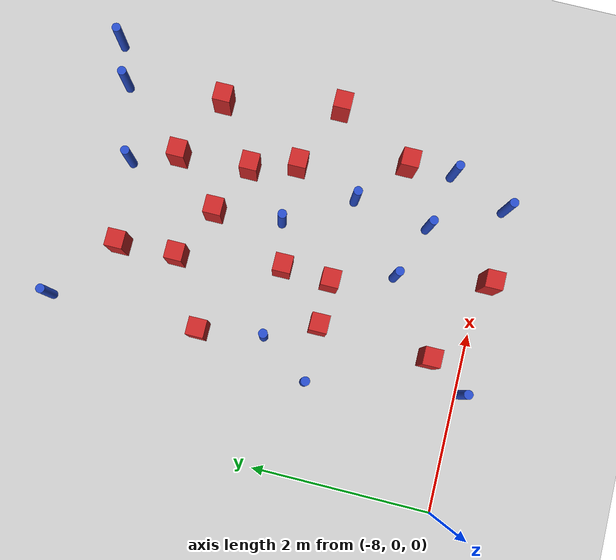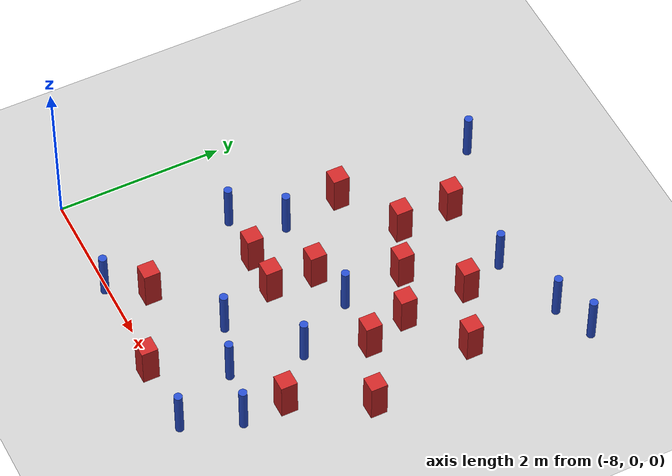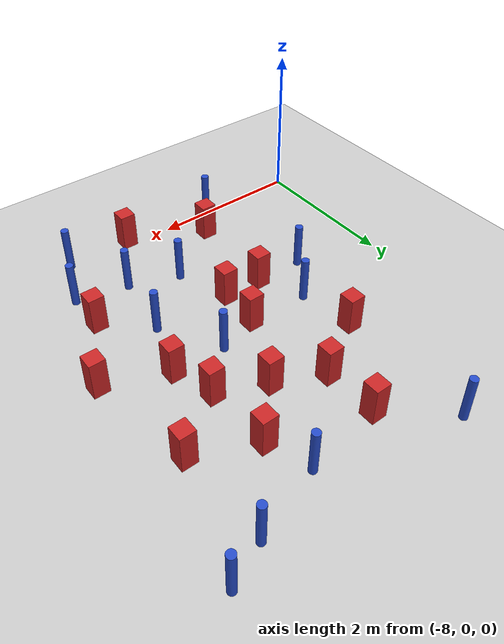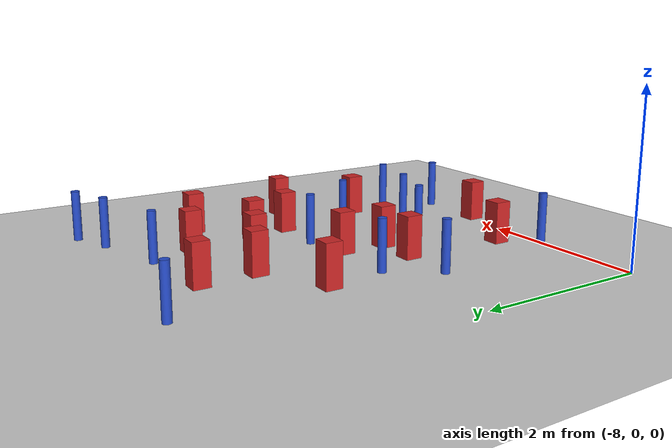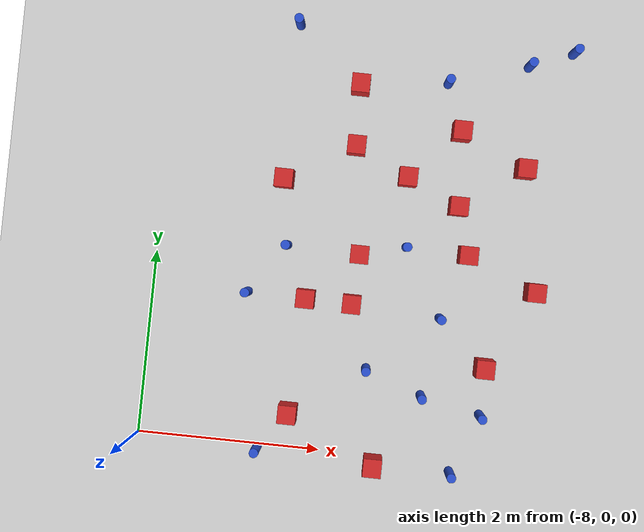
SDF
<sdf version="1.6">
 <world name="default">
  <model name="ground_plane">
   <static>1</static>
   <link name="link">
    <collision name="collision">
     <geometry><plane><normal>0 0 1</normal><size>100 100</size></plane></geometry>
     <surface><friction><ode><mu>100</mu><mu2>50</mu2></ode></friction></surface>
    </collision>
    <visual name="visual">
     <cast_shadows>0</cast_shadows>
     <geometry><plane><normal>0 0 1</normal><size>100 100</size></plane></geometry>
     <material>
      <ambient>1.0 1.0 1.0 1.0</ambient>
      <diffuse>0.8 0.8 0.8 1.0</diffuse>
      <specular>0.01 0.01 0.01 1.000000</specular>
     </material>
    </visual>
   </link>
  </model>
  <model name="pole_obstacle1">
   <static>true</static>
   <pose>-6.67899907143 -0.03429082158 -9.47619616065e-06 5.49618799737e-07 2.36310414061e-07 -1.55090534802e-07</pose>
   <link name="link">
    <pose>0 0 0.3 0 -0 0</pose>
    <inertial>
     <mass>1</mass>
     <inertia><ixx>0.145833</ixx><ixy>0</ixy><ixz>0</ixz><iyy>0.145833</iyy><iyz>0</iyz><izz>0.125</izz></inertia>
    </inertial>
    <collision name="collision">
     <geometry><cylinder><radius>0.05</radius><length>.6</length></cylinder></geometry>
    </collision>
    <visual name="visual">
     <geometry><cylinder><radius>0.05</radius><length>.6</length></cylinder></geometry>
     <material>
      <script><name>Gazebo/Blue</name><uri>file://media/materials/scripts/gazebo.material</uri></script>
     </material>
    </visual>
   </link>
  </model>
  <model name="pole_obstacle8">
   <static>true</static>
   <pose>-4.99658444194 4.15690129705 -9.47619616065e-06 5.49618799737e-07 2.36310414037e-07 -1.55090534814e-07</pose>
   <link name="link">
    <pose>0 0 0.3 0 -0 0</pose>
    <inertial>
     <mass>1</mass>
     <inertia><ixx>0.145833</ixx><ixy>0</ixy><ixz>0</ixz><iyy>0.145833</iyy><iyz>0</iyz><izz>0.125</izz></inertia>
    </inertial>
    <collision name="collision">
     <geometry><cylinder><radius>0.05</radius><length>.6</length></cylinder></geometry>
    </collision>
    <visual name="visual">
     <geometry><cylinder><radius>0.05</radius><length>.6</length></cylinder></geometry>
     <material>
      <script><name>Gazebo/Blue</name><uri>file://media/materials/scripts/gazebo.material</uri></script>
     </material>
    </visual>
   </link>
  </model>
  <model name="square_post_obstacle12">
   <static>true</static>
   <pose>-6.30929738894 1.65366719307 -6.11067671241e-07 -5.50515727128e-06 -8.79689657224e-07 2.37013304536e-05</pose>
   <link name="link">
    <pose>0 0 0.25 0 -0 0</pose>
    <inertial>
     <mass>100</mass>
     <inertia>
      <ixx>0.166667</ixx>
      <ixy>0</ixy>
      <ixz>0</ixz>
      <iyy>0.166667</iyy>
      <iyz>0</iyz>
      <izz>0.166667</izz>
     </inertia>
    </inertial>
    <collision name="collision"><geometry><box><size>.2 .2 .5</size></box></geometry></collision>
    <visual name="visual">
     <geometry><box><size>.2 .2 .5</size></box></geometry>
     <material>
      <script><name>Gazebo/Red</name><uri>file://media/materials/scripts/gazebo.material</uri></script>
     </material>
    </visual>
   </link>
  </model>
  <model name="pole_obstacle17">
   <static>true</static>
   <pose>-4.55149239938 -0.0831261099489 -9.47619616065e-06 5.49618799737e-07 2.36310414061e-07 -1.55090534801e-07</pose>
   <link name="link">
    <pose>0 0 0.3 0 -0 0</pose>
    <inertial>
     <mass>1</mass>
     <inertia><ixx>0.145833</ixx><ixy>0</ixy><ixz>0</ixz><iyy>0.145833</iyy><iyz>0</iyz><izz>0.125</izz></inertia>
    </inertial>
    <collision name="collision">
     <geometry><cylinder><radius>0.05</radius><length>.6</length></cylinder></geometry>
    </collision>
    <visual name="visual">
     <geometry><cylinder><radius>0.05</radius><length>.6</length></cylinder></geometry>
     <material>
      <script><name>Gazebo/Blue</name><uri>file://media/materials/scripts/gazebo.material</uri></script>
     </material>
    </visual>
   </link>
  </model>
  <model name="pole_obstacle27">
   <static>true</static>
   <pose>-6.67659318906 4.63356279092 -9.47619616065e-06 5.49618799737e-07 2.36310414037e-07 -1.55090534814e-07</pose>
   <link name="link">
    <pose>0 0 0.3 0 -0 0</pose>
    <inertial>
     <mass>1</mass>
     <inertia><ixx>0.145833</ixx><ixy>0</ixy><ixz>0</ixz><iyy>0.145833</iyy><iyz>0</iyz><izz>0.125</izz></inertia>
    </inertial>
    <collision name="collision">
     <geometry><cylinder><radius>0.05</radius><length>.6</length></cylinder></geometry>
    </collision>
    <visual name="visual">
     <geometry><cylinder><radius>0.05</radius><length>.6</length></cylinder></geometry>
     <material>
      <script><name>Gazebo/Blue</name><uri>file://media/materials/scripts/gazebo.material</uri></script>
     </material>
    </visual>
   </link>
  </model>
  <model name="square_post_obstacle21">
   <static>true</static>
   <pose>-6.67234045474 2.92822538496 -6.11067671241e-07 -5.50515727128e-06 -8.79689657224e-07 2.37013304536e-05</pose>
   <link name="link">
    <pose>0 0 0.25 0 -0 0</pose>
    <inertial>
     <mass>100</mass>
     <inertia>
      <ixx>0.166667</ixx>
      <ixy>0</ixy>
      <ixz>0</ixz>
      <iyy>0.166667</iyy>
      <iyz>0</iyz>
      <izz>0.166667</izz>
     </inertia>
    </inertial>
    <collision name="collision"><geometry><box><size>.2 .2 .5</size></box></geometry></collision>
    <visual name="visual">
     <geometry><box><size>.2 .2 .5</size></box></geometry>
     <material>
      <script><name>Gazebo/Red</name><uri>file://media/materials/scripts/gazebo.material</uri></script>
     </material>
    </visual>
   </link>
  </model>
  <model name="pole_obstacle51">
   <static>true</static>
   <pose>-3.66563914576 4.6199900222 -9.47619616065e-06 5.49618799738e-07 2.3631041406e-07 -1.55090534801e-07</pose>
   <link name="link">
    <pose>0 0 0.3 0 -0 0</pose>
    <inertial>
     <mass>1</mass>
     <inertia><ixx>0.145833</ixx><ixy>0</ixy><ixz>0</ixz><iyy>0.145833</iyy><iyz>0</iyz><izz>0.125</izz></inertia>
    </inertial>
    <collision name="collision">
     <geometry><cylinder><radius>0.05</radius><length>.6</length></cylinder></geometry>
    </collision>
    <visual name="visual">
     <geometry><cylinder><radius>0.05</radius><length>.6</length></cylinder></geometry>
     <material>
      <script><name>Gazebo/Blue</name><uri>file://media/materials/scripts/gazebo.material</uri></script>
     </material>
    </visual>
   </link>
  </model>
  <model name="square_post_obstacle40">
   <static>true</static>
   <pose>-4.29680795318 1.09732461644 -6.11067671241e-07 -5.50515727128e-06 -8.79689657224e-07 2.37013304536e-05</pose>
   <link name="link">
    <pose>0 0 0.25 0 -0 0</pose>
    <inertial>
     <mass>100</mass>
     <inertia>
      <ixx>0.166667</ixx>
      <ixy>0</ixy>
      <ixz>0</ixz>
      <iyy>0.166667</iyy>
      <iyz>0</iyz>
      <izz>0.166667</izz>
     </inertia>
    </inertial>
    <collision name="collision"><geometry><box><size>.2 .2 .5</size></box></geometry></collision>
    <visual name="visual">
     <geometry><box><size>.2 .2 .5</size></box></geometry>
     <material>
      <script><name>Gazebo/Red</name><uri>file://media/materials/scripts/gazebo.material</uri></script>
     </material>
    </visual>
   </link>
  </model>
  <model name="square_post_obstacle55">
   <static>true</static>
   <pose>-3.83360552042 1.97416597039 -6.11067671241e-07 -5.50515727128e-06 -8.79689657224e-07 2.37013304536e-05</pose>
   <link name="link">
    <pose>0 0 0.25 0 -0 0</pose>
    <inertial>
     <mass>100</mass>
     <inertia>
      <ixx>0.166667</ixx>
      <ixy>0</ixy>
      <ixz>0</ixz>
      <iyy>0.166667</iyy>
      <iyz>0</iyz>
      <izz>0.166667</izz>
     </inertia>
    </inertial>
    <collision name="collision"><geometry><box><size>.2 .2 .5</size></box></geometry></collision>
    <visual name="visual">
     <geometry><box><size>.2 .2 .5</size></box></geometry>
     <material>
      <script><name>Gazebo/Red</name><uri>file://media/materials/scripts/gazebo.material</uri></script>
     </material>
    </visual>
   </link>
  </model>
  <model name="square_post_obstacle61">
   <static>true</static>
   <pose>-5.80478401775 1.64565441938 -6.11067671241e-07 -5.50515727128e-06 -8.79689657224e-07 2.37013304536e-05</pose>
   <link name="link">
    <pose>0 0 0.25 0 -0 0</pose>
    <inertial>
     <mass>100</mass>
     <inertia>
      <ixx>0.166667</ixx>
      <ixy>0</ixy>
      <ixz>0</ixz>
      <iyy>0.166667</iyy>
      <iyz>0</iyz>
      <izz>0.166667</izz>
     </inertia>
    </inertial>
    <collision name="collision"><geometry><box><size>.2 .2 .5</size></box></geometry></collision>
    <visual name="visual">
     <geometry><box><size>.2 .2 .5</size></box></geometry>
     <material>
      <script><name>Gazebo/Red</name><uri>file://media/materials/scripts/gazebo.material</uri></script>
     </material>
    </visual>
   </link>
  </model>
  <model name="pole_obstacle73">
   <static>true</static>
   <pose>-4.13509545801 4.42776585676 -9.47619616065e-06 5.49618799737e-07 2.36310414037e-07 -1.55090534814e-07</pose>
   <link name="link">
    <pose>0 0 0.3 0 -0 0</pose>
    <inertial>
     <mass>1</mass>
     <inertia><ixx>0.145833</ixx><ixy>0</ixy><ixz>0</ixz><iyy>0.145833</iyy><iyz>0</iyz><izz>0.125</izz></inertia>
    </inertial>
    <collision name="collision">
     <geometry><cylinder><radius>0.05</radius><length>.6</length></cylinder></geometry>
    </collision>
    <visual name="visual">
     <geometry><cylinder><radius>0.05</radius><length>.6</length></cylinder></geometry>
     <material>
      <script><name>Gazebo/Blue</name><uri>file://media/materials/scripts/gazebo.material</uri></script>
     </material>
    </visual>
   </link>
  </model>
  <model name="pole_obstacle80">
   <static>true</static>
   <pose>-6.95278286174 1.65966395448 -9.47619616065e-06 5.49618799738e-07 2.36310414071e-07 -1.55090534796e-07</pose>
   <link name="link">
    <pose>0 0 0.3 0 -0 0</pose>
    <inertial>
     <mass>1</mass>
     <inertia><ixx>0.145833</ixx><ixy>0</ixy><ixz>0</ixz><iyy>0.145833</iyy><iyz>0</iyz><izz>0.125</izz></inertia>
    </inertial>
    <collision name="collision">
     <geometry><cylinder><radius>0.05</radius><length>.6</length></cylinder></geometry>
    </collision>
    <visual name="visual">
     <geometry><cylinder><radius>0.05</radius><length>.6</length></cylinder></geometry>
     <material>
      <script><name>Gazebo/Blue</name><uri>file://media/materials/scripts/gazebo.material</uri></script>
     </material>
    </visual>
   </link>
  </model>
  <model name="pole_obstacle81">
   <static>true</static>
   <pose>-4.82914749725 1.5846387453 -9.47619616065e-06 5.49618799738e-07 2.36310414071e-07 -1.55090534796e-07</pose>
   <link name="link">
    <pose>0 0 0.3 0 -0 0</pose>
    <inertial>
     <mass>1</mass>
     <inertia><ixx>0.145833</ixx><ixy>0</ixy><ixz>0</ixz><iyy>0.145833</iyy><iyz>0</iyz><izz>0.125</izz></inertia>
    </inertial>
    <collision name="collision">
     <geometry><cylinder><radius>0.05</radius><length>.6</length></cylinder></geometry>
    </collision>
    <visual name="visual">
     <geometry><cylinder><radius>0.05</radius><length>.6</length></cylinder></geometry>
     <material>
      <script><name>Gazebo/Blue</name><uri>file://media/materials/scripts/gazebo.material</uri></script>
     </material>
    </visual>
   </link>
  </model>
  <model name="square_post_obstacle73">
   <static>true</static>
   <pose>-5.40141067775 -0.0803570759664 -6.11067671241e-07 -5.50515727128e-06 -8.79689657224e-07 2.37013304536e-05</pose>
   <link name="link">
    <pose>0 0 0.25 0 -0 0</pose>
    <inertial>
     <mass>100</mass>
     <inertia>
      <ixx>0.166667</ixx>
      <ixy>0</ixy>
      <ixz>0</ixz>
      <iyy>0.166667</iyy>
      <iyz>0</iyz>
      <izz>0.166667</izz>
     </inertia>
    </inertial>
    <collision name="collision"><geometry><box><size>.2 .2 .5</size></box></geometry></collision>
    <visual name="visual">
     <geometry><box><size>.2 .2 .5</size></box></geometry>
     <material>
      <script><name>Gazebo/Red</name><uri>file://media/materials/scripts/gazebo.material</uri></script>
     </material>
    </visual>
   </link>
  </model>
  <model name="square_post_obstacle95">
   <static>true</static>
   <pose>-4.75753028642 2.81975104585 -6.11067671241e-07 -5.50515727128e-06 -8.79689657224e-07 2.37013304536e-05</pose>
   <link name="link">
    <pose>0 0 0.25 0 -0 0</pose>
    <inertial>
     <mass>100</mass>
     <inertia>
      <ixx>0.166667</ixx>
      <ixy>0</ixy>
      <ixz>0</ixz>
      <iyy>0.166667</iyy>
      <iyz>0</iyz>
      <izz>0.166667</izz>
     </inertia>
    </inertial>
    <collision name="collision"><geometry><box><size>.2 .2 .5</size></box></geometry></collision>
    <visual name="visual">
     <geometry><box><size>.2 .2 .5</size></box></geometry>
     <material>
      <script><name>Gazebo/Red</name><uri>file://media/materials/scripts/gazebo.material</uri></script>
     </material>
    </visual>
   </link>
  </model>
  <model name="square_post_obstacle115">
   <static>true</static>
   <pose>-5.77399974855 2.19103869768 -6.11067671241e-07 -5.50515727128e-06 -8.79689657224e-07 2.37013304536e-05</pose>
   <link name="link">
    <pose>0 0 0.25 0 -0 0</pose>
    <inertial>
     <mass>100</mass>
     <inertia>
      <ixx>0.166667</ixx>
      <ixy>0</ixy>
      <ixz>0</ixz>
      <iyy>0.166667</iyy>
      <iyz>0</iyz>
      <izz>0.166667</izz>
     </inertia>
    </inertial>
    <collision name="collision"><geometry><box><size>.2 .2 .5</size></box></geometry></collision>
    <visual name="visual">
     <geometry><box><size>.2 .2 .5</size></box></geometry>
     <material>
      <script><name>Gazebo/Red</name><uri>file://media/materials/scripts/gazebo.material</uri></script>
     </material>
    </visual>
   </link>
  </model>
  <model name="pole_obstacle145">
   <static>true</static>
   <pose>-4.94904557268 0.719263074853 -9.47619616065e-06 5.49618799737e-07 2.36310414061e-07 -1.550905348e-07</pose>
   <link name="link">
    <pose>0 0 0.3 0 -0 0</pose>
    <inertial>
     <mass>1</mass>
     <inertia><ixx>0.145833</ixx><ixy>0</ixy><ixz>0</ixz><iyy>0.145833</iyy><iyz>0</iyz><izz>0.125</izz></inertia>
    </inertial>
    <collision name="collision">
     <geometry><cylinder><radius>0.05</radius><length>.6</length></cylinder></geometry>
    </collision>
    <visual name="visual">
     <geometry><cylinder><radius>0.05</radius><length>.6</length></cylinder></geometry>
     <material>
      <script><name>Gazebo/Blue</name><uri>file://media/materials/scripts/gazebo.material</uri></script>
     </material>
    </visual>
   </link>
  </model>
  <model name="square_post_obstacle142">
   <static>true</static>
   <pose>-4.60038494872 2.30065681788 -6.11067671241e-07 -5.50515727128e-06 -8.79689657224e-07 2.37013304536e-05</pose>
   <link name="link">
    <pose>0 0 0.25 0 -0 0</pose>
    <inertial>
     <mass>100</mass>
     <inertia>
      <ixx>0.166667</ixx>
      <ixy>0</ixy>
      <ixz>0</ixz>
      <iyy>0.166667</iyy>
      <iyz>0</iyz>
      <izz>0.166667</izz>
     </inertia>
    </inertial>
    <collision name="collision"><geometry><box><size>.2 .2 .5</size></box></geometry></collision>
    <visual name="visual">
     <geometry><box><size>.2 .2 .5</size></box></geometry>
     <material>
      <script><name>Gazebo/Red</name><uri>file://media/materials/scripts/gazebo.material</uri></script>
     </material>
    </visual>
   </link>
  </model>
  <model name="pole_obstacle156">
   <static>true</static>
   <pose>-6.57302338177 2.21254058671 -9.47619616065e-06 5.49618799738e-07 2.36310414051e-07 -1.55090534805e-07</pose>
   <link name="link">
    <pose>0 0 0.3 0 -0 0</pose>
    <inertial>
     <mass>1</mass>
     <inertia><ixx>0.145833</ixx><ixy>0</ixy><ixz>0</ixz><iyy>0.145833</iyy><iyz>0</iyz><izz>0.125</izz></inertia>
    </inertial>
    <collision name="collision">
     <geometry><cylinder><radius>0.05</radius><length>.6</length></cylinder></geometry>
    </collision>
    <visual name="visual">
     <geometry><cylinder><radius>0.05</radius><length>.6</length></cylinder></geometry>
     <material>
      <script><name>Gazebo/Blue</name><uri>file://media/materials/scripts/gazebo.material</uri></script>
     </material>
    </visual>
   </link>
  </model>
  <model name="pole_obstacle160">
   <static>true</static>
   <pose>-5.27182141052 2.32277845484 -9.47619616065e-06 5.49618799738e-07 2.36310414051e-07 -1.55090534805e-07</pose>
   <link name="link">
    <pose>0 0 0.3 0 -0 0</pose>
    <inertial>
     <mass>1</mass>
     <inertia><ixx>0.145833</ixx><ixy>0</ixy><ixz>0</ixz><iyy>0.145833</iyy><iyz>0</iyz><izz>0.125</izz></inertia>
    </inertial>
    <collision name="collision">
     <geometry><cylinder><radius>0.05</radius><length>.6</length></cylinder></geometry>
    </collision>
    <visual name="visual">
     <geometry><cylinder><radius>0.05</radius><length>.6</length></cylinder></geometry>
     <material>
      <script><name>Gazebo/Blue</name><uri>file://media/materials/scripts/gazebo.material</uri></script>
     </material>
    </visual>
   </link>
  </model>
  <model name="square_post_obstacle156">
   <static>true</static>
   <pose>-5.92648466978 3.36571086974 -6.11067671241e-07 -5.50515727128e-06 -8.79689657224e-07 2.37013304536e-05</pose>
   <link name="link">
    <pose>0 0 0.25 0 -0 0</pose>
    <inertial>
     <mass>100</mass>
     <inertia>
      <ixx>0.166667</ixx>
      <ixy>0</ixy>
      <ixz>0</ixz>
      <iyy>0.166667</iyy>
      <iyz>0</iyz>
      <izz>0.166667</izz>
     </inertia>
    </inertial>
    <collision name="collision"><geometry><box><size>.2 .2 .5</size></box></geometry></collision>
    <visual name="visual">
     <geometry><box><size>.2 .2 .5</size></box></geometry>
     <material>
      <script><name>Gazebo/Red</name><uri>file://media/materials/scripts/gazebo.material</uri></script>
     </material>
    </visual>
   </link>
  </model>
  <model name="square_post_obstacle162">
   <static>true</static>
   <pose>-5.94903880034 4.0279035705 -6.11067671241e-07 -5.50515727128e-06 -8.79689657224e-07 2.37013304536e-05</pose>
   <link name="link">
    <pose>0 0 0.25 0 -0 0</pose>
    <inertial>
     <mass>100</mass>
     <inertia>
      <ixx>0.166667</ixx>
      <ixy>0</ixy>
      <ixz>0</ixz>
      <iyy>0.166667</iyy>
      <iyz>0</iyz>
      <izz>0.166667</izz>
     </inertia>
    </inertial>
    <collision name="collision"><geometry><box><size>.2 .2 .5</size></box></geometry></collision>
    <visual name="visual">
     <geometry><box><size>.2 .2 .5</size></box></geometry>
     <material>
      <script><name>Gazebo/Red</name><uri>file://media/materials/scripts/gazebo.material</uri></script>
     </material>
    </visual>
   </link>
  </model>
  <model name="square_post_obstacle165">
   <static>true</static>
   <pose>-5.33637763638 3.08195783267 -6.11067671241e-07 -5.50515727128e-06 -8.79689657224e-07 2.37013304536e-05</pose>
   <link name="link">
    <pose>0 0 0.25 0 -0 0</pose>
    <inertial>
     <mass>100</mass>
     <inertia>
      <ixx>0.166667</ixx>
      <ixy>0</ixy>
      <ixz>0</ixz>
      <iyy>0.166667</iyy>
      <iyz>0</iyz>
      <izz>0.166667</izz>
     </inertia>
    </inertial>
    <collision name="collision"><geometry><box><size>.2 .2 .5</size></box></geometry></collision>
    <visual name="visual">
     <geometry><box><size>.2 .2 .5</size></box></geometry>
     <material>
      <script><name>Gazebo/Red</name><uri>file://media/materials/scripts/gazebo.material</uri></script>
     </material>
    </visual>
   </link>
  </model>
  <model name="square_post_obstacle170">
   <static>true</static>
   <pose>-4.07381450474 3.29892910013 -6.11067671241e-07 -5.50515727128e-06 -8.79689657224e-07 2.37013304536e-05</pose>
   <link name="link">
    <pose>0 0 0.25 0 -0 0</pose>
    <inertial>
     <mass>100</mass>
     <inertia>
      <ixx>0.166667</ixx>
      <ixy>0</ixy>
      <ixz>0</ixz>
      <iyy>0.166667</iyy>
      <iyz>0</iyz>
      <izz>0.166667</izz>
     </inertia>
    </inertial>
    <collision name="collision"><geometry><box><size>.2 .2 .5</size></box></geometry></collision>
    <visual name="visual">
     <geometry><box><size>.2 .2 .5</size></box></geometry>
     <material>
      <script><name>Gazebo/Red</name><uri>file://media/materials/scripts/gazebo.material</uri></script>
     </material>
    </visual>
   </link>
  </model>
  <model name="square_post_obstacle180">
   <static>true</static>
   <pose>-6.37635182449 0.393923525514 -6.11067671241e-07 -5.50515727128e-06 -8.79689657224e-07 2.37013304536e-05</pose>
   <link name="link">
    <pose>0 0 0.25 0 -0 0</pose>
    <inertial>
     <mass>100</mass>
     <inertia>
      <ixx>0.166667</ixx>
      <ixy>0</ixy>
      <ixz>0</ixz>
      <iyy>0.166667</iyy>
      <iyz>0</iyz>
      <izz>0.166667</izz>
     </inertia>
    </inertial>
    <collision name="collision"><geometry><box><size>.2 .2 .5</size></box></geometry></collision>
    <visual name="visual">
     <geometry><box><size>.2 .2 .5</size></box></geometry>
     <material>
      <script><name>Gazebo/Red</name><uri>file://media/materials/scripts/gazebo.material</uri></script>
     </material>
    </visual>
   </link>
  </model>
  <model name="square_post_obstacle205">
   <static>true</static>
   <pose>-4.80511974271 3.63606771935 -6.11067671241e-07 -5.50515727128e-06 -8.79689657224e-07 2.37013304536e-05</pose>
   <link name="link">
    <pose>0 0 0.25 0 -0 0</pose>
    <inertial>
     <mass>100</mass>
     <inertia>
      <ixx>0.166667</ixx>
      <ixy>0</ixy>
      <ixz>0</ixz>
      <iyy>0.166667</iyy>
      <iyz>0</iyz>
      <izz>0.166667</izz>
     </inertia>
    </inertial>
    <collision name="collision"><geometry><box><size>.2 .2 .5</size></box></geometry></collision>
    <visual name="visual">
     <geometry><box><size>.2 .2 .5</size></box></geometry>
     <material>
      <script><name>Gazebo/Red</name><uri>file://media/materials/scripts/gazebo.material</uri></script>
     </material>
    </visual>
   </link>
  </model>
  <model name="pole_obstacle195">
   <static>true</static>
   <pose>-4.28554416882 0.573074767534 -9.47619616065e-06 5.49618799737e-07 2.36310414061e-07 -1.550905348e-07</pose>
   <link name="link">
    <pose>0 0 0.3 0 -0 0</pose>
    <inertial>
     <mass>1</mass>
     <inertia><ixx>0.145833</ixx><ixy>0</ixy><ixz>0</ixz><iyy>0.145833</iyy><iyz>0</iyz><izz>0.125</izz></inertia>
    </inertial>
    <collision name="collision">
     <geometry><cylinder><radius>0.05</radius><length>.6</length></cylinder></geometry>
    </collision>
    <visual name="visual">
     <geometry><cylinder><radius>0.05</radius><length>.6</length></cylinder></geometry>
     <material>
      <script><name>Gazebo/Blue</name><uri>file://media/materials/scripts/gazebo.material</uri></script>
     </material>
    </visual>
   </link>
  </model>
  <model name="pole_obstacle214">
   <static>true</static>
   <pose>-5.57579010704 0.952882455673 -9.47619616065e-06 5.49618799737e-07 2.36310414073e-07 -1.55090534792e-07</pose>
   <link name="link">
    <pose>0 0 0.3 0 -0 0</pose>
    <inertial>
     <mass>1</mass>
     <inertia><ixx>0.145833</ixx><ixy>0</ixy><ixz>0</ixz><iyy>0.145833</iyy><iyz>0</iyz><izz>0.125</izz></inertia>
    </inertial>
    <collision name="collision">
     <geometry><cylinder><radius>0.05</radius><length>.6</length></cylinder></geometry>
    </collision>
    <visual name="visual">
     <geometry><cylinder><radius>0.05</radius><length>.6</length></cylinder></geometry>
     <material>
      <script><name>Gazebo/Blue</name><uri>file://media/materials/scripts/gazebo.material</uri></script>
     </material>
    </visual>
   </link>
  </model>
 </world>
</sdf>
